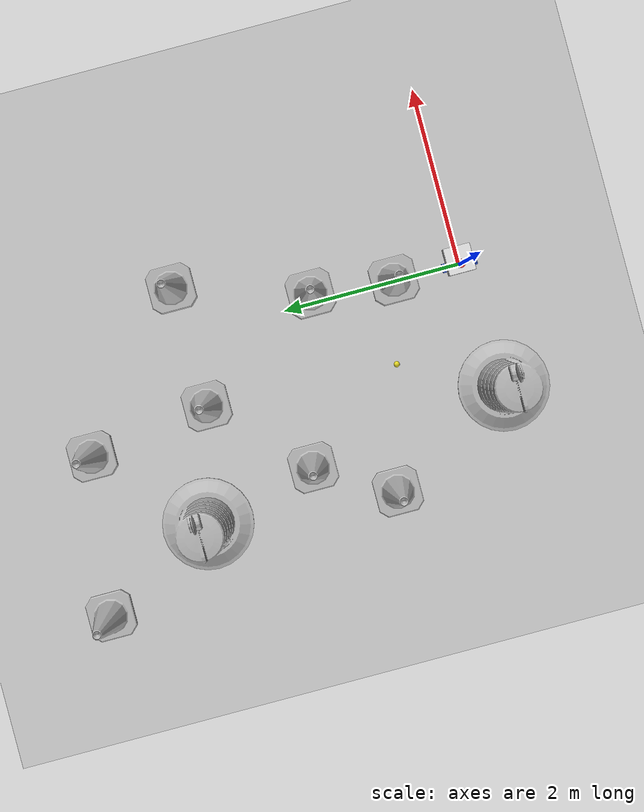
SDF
<sdf version="1.7">
 <world name="default">
  <light name="sun" type="directional">
   <pose>0 0 10 0 -0 0</pose>
   <diffuse>0.8 0.8 0.8 1</diffuse>
   <specular>0.2 0.2 0.2 1</specular>
   <attenuation>
    <range>1000</range>
    <constant>0.9</constant>
    <linear>0.01</linear>
    <quadratic>0.001</quadratic>
   </attenuation>
   <direction>-0.5 0.1 -0.9</direction>
   <spot><inner_angle>0</inner_angle><outer_angle>0</outer_angle><falloff>0</falloff></spot>
  </light>
  <model name="ground_plane">
   <static>1</static>
   <link name="link">
    <collision name="collision">
     <geometry><plane><normal>0 0 1</normal><size>100 100</size></plane></geometry>
     <surface>
      <contact><collide_bitmask>65535</collide_bitmask></contact>
      <friction><ode><mu>100</mu><mu2>50</mu2></ode></friction>
     </surface>
    </collision>
    <visual name="visual">
     <cast_shadows>0</cast_shadows>
     <geometry><plane><normal>0 0 1</normal><size>100 100</size></plane></geometry>
     <material>
      <script><uri>file://media/materials/scripts/gazebo.material</uri><name>Gazebo/Grey</name></script>
     </material>
    </visual>
   </link>
  </model>
  <gravity>0 0 -9.8</gravity>
  <magnetic_field>6e-06 2.3e-05 -4.2e-05</magnetic_field>
  <atmosphere type="adiabatic"/>
  <physics type="ode">
   <max_step_size>0.001</max_step_size>
   <real_time_factor>1</real_time_factor>
   <real_time_update_rate>1000</real_time_update_rate>
  </physics>
  <scene><ambient>0.4 0.4 0.4 1</ambient><background>0.7 0.7 0.7 1</background><shadows>1</shadows></scene>
  <audio><device>default</device></audio>
  <spherical_coordinates>
   <surface_model>EARTH_WGS84</surface_model>
   <latitude_deg>0</latitude_deg>
   <longitude_deg>0</longitude_deg>
   <elevation>0</elevation>
   <heading_deg>0</heading_deg>
  </spherical_coordinates>
  <model name="Construction Barrel">
   <link name="link">
    <inertial>
     <pose>0 0 0.4 0 -0 0</pose>
     <mass>500</mass>
     <inertia><ixx>51.2096</ixx><iyy>51.2096</iyy><izz>25</izz><ixy>0</ixy><ixz>0</ixz><iyz>0</iyz></inertia>
    </inertial>
    <collision name="collision">
     <geometry><mesh><uri>model://construction_barrel/meshes/construction_barrel.dae</uri></mesh></geometry>
    </collision>
    <visual name="visual">
     <geometry><mesh><uri>model://construction_barrel/meshes/construction_barrel.dae</uri></mesh></geometry>
    </visual>
   </link>
   <pose>-1.41893 -0.134317 0 0 0 -3.1e-05</pose>
  </model>
  <model name="Construction Cone">
   <link name="link">
    <collision name="collision">
     <geometry>
      <mesh><scale>10 10 10</scale><uri>model://construction_cone/meshes/construction_cone.dae</uri></mesh>
     </geometry>
    </collision>
    <visual name="visual">
     <geometry>
      <mesh><scale>10 10 10</scale><uri>model://construction_cone/meshes/construction_cone.dae</uri></mesh>
     </geometry>
    </visual>
    <inertial>
     <inertia><ixx>1</ixx><ixy>0</ixy><ixz>0</ixz><iyy>1</iyy><iyz>0</iyz><izz>1</izz></inertia>
     <mass>1</mass>
    </inertial>
   </link>
   <pose>-1.7517 2.13765 -0 0 -1e-06 0</pose>
  </model>
  <model name="Construction Cone_0">
   <link name="link">
    <collision name="collision">
     <geometry>
      <mesh><scale>10 10 10</scale><uri>model://construction_cone/meshes/construction_cone.dae</uri></mesh>
     </geometry>
    </collision>
    <visual name="visual">
     <geometry>
      <mesh><scale>10 10 10</scale><uri>model://construction_cone/meshes/construction_cone.dae</uri></mesh>
     </geometry>
    </visual>
    <inertial>
     <inertia><ixx>1</ixx><ixy>0</ixy><ixz>0</ixz><iyy>1</iyy><iyz>0</iyz><izz>1</izz></inertia>
     <mass>1</mass>
    </inertial>
   </link>
   <pose>-2.24557 1.30146 -3e-06 -3e-06 -1e-06 -0</pose>
  </model>
  <model name="Construction Cone_1">
   <link name="link">
    <collision name="collision">
     <geometry>
      <mesh><scale>10 10 10</scale><uri>model://construction_cone/meshes/construction_cone.dae</uri></mesh>
     </geometry>
    </collision>
    <visual name="visual">
     <geometry>
      <mesh><scale>10 10 10</scale><uri>model://construction_cone/meshes/construction_cone.dae</uri></mesh>
     </geometry>
    </visual>
    <inertial>
     <inertia><ixx>1</ixx><ixy>0</ixy><ixz>0</ixz><iyy>1</iyy><iyz>0</iyz><izz>1</izz></inertia>
     <mass>1</mass>
    </inertial>
   </link>
   <pose>-0.790651 3.09783 -1e-05 -1e-06 0 0</pose>
  </model>
  <model name="Construction Cone_2">
   <link name="link">
    <collision name="collision">
     <geometry>
      <mesh><scale>10 10 10</scale><uri>model://construction_cone/meshes/construction_cone.dae</uri></mesh>
     </geometry>
    </collision>
    <visual name="visual">
     <geometry>
      <mesh><scale>10 10 10</scale><uri>model://construction_cone/meshes/construction_cone.dae</uri></mesh>
     </geometry>
    </visual>
    <inertial>
     <inertia><ixx>1</ixx><ixy>0</ixy><ixz>0</ixz><iyy>1</iyy><iyz>0</iyz><izz>1</izz></inertia>
     <mass>1</mass>
    </inertial>
   </link>
   <pose>0.020918 0.743842 -4e-06 4e-06 -1e-06 0</pose>
  </model>
  <model name="Construction Cone_3">
   <link name="link">
    <collision name="collision">
     <geometry>
      <mesh><scale>10 10 10</scale><uri>model://construction_cone/meshes/construction_cone.dae</uri></mesh>
     </geometry>
    </collision>
    <visual name="visual">
     <geometry>
      <mesh><scale>10 10 10</scale><uri>model://construction_cone/meshes/construction_cone.dae</uri></mesh>
     </geometry>
    </visual>
    <inertial>
     <inertia><ixx>1</ixx><ixy>0</ixy><ixz>0</ixz><iyy>1</iyy><iyz>0</iyz><izz>1</izz></inertia>
     <mass>1</mass>
    </inertial>
   </link>
   <pose>0.113683 1.67055 -3e-06 -3e-06 -1e-06 -0</pose>
  </model>
  <model name="Construction Cone_4">
   <link name="link">
    <collision name="collision">
     <geometry>
      <mesh><scale>10 10 10</scale><uri>model://construction_cone/meshes/construction_cone.dae</uri></mesh>
     </geometry>
    </collision>
    <visual name="visual">
     <geometry>
      <mesh><scale>10 10 10</scale><uri>model://construction_cone/meshes/construction_cone.dae</uri></mesh>
     </geometry>
    </visual>
    <inertial>
     <inertia><ixx>1</ixx><ixy>0</ixy><ixz>0</ixz><iyy>1</iyy><iyz>0</iyz><izz>1</izz></inertia>
     <mass>1</mass>
    </inertial>
   </link>
   <pose>0.565351 3.14138 -4e-06 4e-06 -1e-06 0</pose>
  </model>
  <model name="Construction Barrel_0">
   <link name="link">
    <inertial>
     <pose>0 0 0.4 0 -0 0</pose>
     <mass>500</mass>
     <inertia><ixx>51.2096</ixx><iyy>51.2096</iyy><izz>25</izz><ixy>0</ixy><ixz>0</ixz><iyz>0</iyz></inertia>
    </inertial>
    <collision name="collision">
     <geometry><mesh><uri>model://construction_barrel/meshes/construction_barrel.dae</uri></mesh></geometry>
    </collision>
    <visual name="visual">
     <geometry><mesh><uri>model://construction_barrel/meshes/construction_barrel.dae</uri></mesh></geometry>
    </visual>
   </link>
   <pose>-2.05537 3.42046 -4e-06 -3e-06 -1e-05 -1.7e-05</pose>
  </model>
  <model name="Construction Cone_5">
   <link name="link">
    <collision name="collision">
     <geometry>
      <mesh><scale>10 10 10</scale><uri>model://construction_cone/meshes/construction_cone.dae</uri></mesh>
     </geometry>
    </collision>
    <visual name="visual">
     <geometry>
      <mesh><scale>10 10 10</scale><uri>model://construction_cone/meshes/construction_cone.dae</uri></mesh>
     </geometry>
    </visual>
    <inertial>
     <inertia><ixx>1</ixx><ixy>0</ixy><ixz>0</ixz><iyy>1</iyy><iyz>0</iyz><izz>1</izz></inertia>
     <mass>1</mass>
    </inertial>
   </link>
   <pose>-1.00257 4.46516 -0 0 -0 0</pose>
  </model>
  <model name="Construction Cone_6">
   <link name="link">
    <collision name="collision">
     <geometry>
      <mesh><scale>10 10 10</scale><uri>model://construction_cone/meshes/construction_cone.dae</uri></mesh>
     </geometry>
    </collision>
    <visual name="visual">
     <geometry>
      <mesh><scale>10 10 10</scale><uri>model://construction_cone/meshes/construction_cone.dae</uri></mesh>
     </geometry>
    </visual>
    <inertial>
     <inertia><ixx>1</ixx><ixy>0</ixy><ixz>0</ixz><iyy>1</iyy><iyz>0</iyz><izz>1</izz></inertia>
     <mass>1</mass>
    </inertial>
   </link>
   <pose>-2.75927 4.7109 -3e-06 -3e-06 -1e-06 -0</pose>
  </model>
  <model name="Mangobee_DifferentialDriveWheel_Robot">
   <link name="base_link">
    <inertial>
     <pose>0.055714 0 0.078571 0 -0 0</pose>
     <mass>0.7</mass>
     <inertia>
      <ixx>0.0064169</ixx>
      <ixy>0</ixy>
      <ixz>0.00118929</ixz>
      <iyy>0.00745405</iyy>
      <iyz>0</iyz>
      <izz>0.00876214</izz>
     </inertia>
    </inertial>
    <collision name="base_link_fixed_joint_lump__chassis_collision">
     <pose>0.05 0 0.075 0 -0 0</pose>
     <geometry><box><size>0.3 0.3 0.15</size></box></geometry>
    </collision>
    <collision name="base_link_fixed_joint_lump__caster_wheel_collision_1">
     <pose>0.14 0 0 0 -0 0</pose>
     <geometry><sphere><radius>0.05</radius></sphere></geometry>
     <surface><friction><ode><mu>0.001</mu><mu2>0.001</mu2></ode></friction></surface>
    </collision>
    <collision name="base_link_fixed_joint_lump__laser_frame_collision_2">
     <pose>0 0 0.175 0 -0 0</pose>
     <geometry><cylinder><length>0.04</length><radius>0.05</radius></cylinder></geometry>
    </collision>
    <visual name="base_link_fixed_joint_lump__chassis_visual">
     <pose>0.05 0 0.075 0 -0 0</pose>
     <geometry><box><size>0.3 0.3 0.15</size></box></geometry>
     <material>
      <script><name>Gazebo/White</name><uri>file://media/materials/scripts/gazebo.material</uri></script>
     </material>
    </visual>
    <visual name="base_link_fixed_joint_lump__camera_link_visual_1">
     <pose>0.205 0 0.08 0 -0 0</pose>
     <geometry><box><size>0.01 0.03 0.03</size></box></geometry>
     <material>
      <script><name>Gazebo/Red</name><uri>file://media/materials/scripts/gazebo.material</uri></script>
     </material>
    </visual>
    <visual name="base_link_fixed_joint_lump__caster_wheel_visual_2">
     <pose>0.14 0 0 0 -0 0</pose>
     <geometry><sphere><radius>0.05</radius></sphere></geometry>
     <material>
      <script><name>Gazebo/Black</name><uri>file://media/materials/scripts/gazebo.material</uri></script>
     </material>
    </visual>
    <visual name="base_link_fixed_joint_lump__laser_frame_visual_3">
     <pose>0 0 0.175 0 -0 0</pose>
     <geometry><cylinder><length>0.04</length><radius>0.05</radius></cylinder></geometry>
     <material>
      <script><name>Gazebo/Red</name><uri>file://media/materials/scripts/gazebo.material</uri></script>
     </material>
    </visual>
    <sensor name="camera" type="camera">
     <visualize>1</visualize>
     <update_rate>10</update_rate>
     <camera>
      <horizontal_fov>1.089</horizontal_fov>
      <image><format>R8G8B8</format><width>640</width><height>480</height></image>
      <clip><near>0.05</near><far>8</far></clip>
     </camera>
     <plugin name="camera_controller" filename="libgazebo_ros_camera.so">
      <frame_name>camera_link_optical</frame_name>
     </plugin>
     <pose>0.205 0 0.08 0 -0 0</pose>
    </sensor>
    <sensor name="laser" type="ray">
     <visualize>0</visualize>
     <update_rate>10</update_rate>
     <ray>
      <scan>
       <horizontal>
        <samples>360</samples>
        <min_angle>-3.14</min_angle>
        <max_angle>3.14</max_angle>
        <resolution>1</resolution>
       </horizontal>
       <vertical><samples>1</samples><min_angle>0</min_angle><max_angle>0</max_angle></vertical>
      </scan>
      <range><min>0.3</min><max>12</max></range>
     </ray>
     <plugin name="laser_controller" filename="libgazebo_ros_ray_sensor.so">
      <ros><argument>~/out:=scan</argument></ros>
      <output_type>sensor_msgs/LaserScan</output_type>
      <frame_name>laser_frame</frame_name>
     </plugin>
     <pose>0 0 0.175 0 -0 0</pose>
    </sensor>
   </link>
   <joint name="left_wheel_joint" type="revolute">
    <pose relative_to="base_link">0 0.175 0 -1.5708 0 0</pose>
    <parent>base_link</parent>
    <child>left_wheel</child>
    <axis>
     <xyz>0 0 1</xyz>
     <limit><lower>-1e+16</lower><upper>1e+16</upper></limit>
     <dynamics><spring_reference>0</spring_reference><spring_stiffness>0</spring_stiffness></dynamics>
    </axis>
   </joint>
   <link name="left_wheel">
    <pose relative_to="left_wheel_joint">0 0 0 0 -0 0</pose>
    <inertial>
     <mass>0.1</mass>
     <inertia>
      <ixx>7.58333e-05</ixx>
      <ixy>0</ixy>
      <ixz>0</ixz>
      <iyy>7.58333e-05</iyy>
      <iyz>0</iyz>
      <izz>0.000125</izz>
     </inertia>
    </inertial>
    <collision name="left_wheel_collision">
     <geometry><cylinder><length>0.04</length><radius>0.05</radius></cylinder></geometry>
    </collision>
    <visual name="left_wheel_visual">
     <geometry><cylinder><length>0.04</length><radius>0.05</radius></cylinder></geometry>
     <material>
      <script><name>Gazebo/Blue</name><uri>file://media/materials/scripts/gazebo.material</uri></script>
     </material>
    </visual>
   </link>
   <joint name="right_wheel_joint" type="revolute">
    <pose relative_to="base_link">0 -0.175 0 1.5708 -0 0</pose>
    <parent>base_link</parent>
    <child>right_wheel</child>
    <axis>
     <xyz>0 0 -1</xyz>
     <limit><lower>-1e+16</lower><upper>1e+16</upper></limit>
     <dynamics><spring_reference>0</spring_reference><spring_stiffness>0</spring_stiffness></dynamics>
    </axis>
   </joint>
   <link name="right_wheel">
    <pose relative_to="right_wheel_joint">0 0 0 0 -0 0</pose>
    <inertial>
     <mass>0.1</mass>
     <inertia>
      <ixx>7.58333e-05</ixx>
      <ixy>0</ixy>
      <ixz>0</ixz>
      <iyy>7.58333e-05</iyy>
      <iyz>0</iyz>
      <izz>0.000125</izz>
     </inertia>
    </inertial>
    <collision name="right_wheel_collision">
     <geometry><cylinder><length>0.04</length><radius>0.05</radius></cylinder></geometry>
    </collision>
    <visual name="right_wheel_visual">
     <geometry><cylinder><length>0.04</length><radius>0.05</radius></cylinder></geometry>
     <material>
      <script><name>Gazebo/Blue</name><uri>file://media/materials/scripts/gazebo.material</uri></script>
     </material>
    </visual>
   </link>
   <static>0</static>
   <plugin name="diff_drive" filename="libgazebo_ros_diff_drive.so">
    <left_joint>left_wheel_joint</left_joint>
    <right_joint>right_wheel_joint</right_joint>
    <wheel_separation>0.35</wheel_separation>
    <wheel_diameter>0.1</wheel_diameter>
    <max_wheel_torque>200</max_wheel_torque>
    <max_wheel_acceleration>10.0</max_wheel_acceleration>
    <odometry_frame>odom</odometry_frame>
    <robot_base_frame>base_link</robot_base_frame>
    <publish_odom>1</publish_odom>
    <publish_odom_tf>1</publish_odom_tf>
    <publish_wheel_tf>1</publish_wheel_tf>
   </plugin>
   <pose>0.001232 1.2e-05 0.05 -0 1.2e-05 7e-06</pose>
  </model>
  <model name="tennisball">
   <link name="link_1">
    <inertial>
     <mass>1</mass>
     <inertia><ixx>0.1</ixx><ixy>0</ixy><ixz>0</ixz><iyy>0.1</iyy><iyz>0</iyz><izz>0.1</izz></inertia>
    </inertial>
    <pose>-0.210638 0.433159 0 0 -0 0</pose>
    <visual name="visual">
     <geometry><sphere><radius>0.033</radius></sphere></geometry>
     <material>
      <lighting>1</lighting>
      <script><uri>file://media/materials/scripts/gazebo.material</uri><name>Gazebo/Yellow</name></script>
      <shader type="pixel"><normal_map>__default__</normal_map></shader>
      <ambient>1 1 0 1</ambient>
      <diffuse>1 1 0 1</diffuse>
      <emissive>0 0 0 1</emissive>
     </material>
    </visual>
    <collision name="collision">
     <geometry><sphere><radius>0.033</radius></sphere></geometry>
     <surface>
      <friction>
       <ode><mu>1</mu><mu2>1</mu2><fdir1>0 0 0</fdir1><slip1>0</slip1><slip2>0</slip2></ode>
       <torsional>
        <coefficient>1</coefficient>
        <patch_radius>0</patch_radius>
        <surface_radius>0</surface_radius>
        <use_patch_radius>1</use_patch_radius>
        <ode><slip>0</slip></ode>
       </torsional>
      </friction>
      <bounce><restitution_coefficient>0</restitution_coefficient><threshold>1e+06</threshold></bounce>
      <contact>
       <collide_without_contact>0</collide_without_contact>
       <collide_without_contact_bitmask>1</collide_without_contact_bitmask>
       <collide_bitmask>1</collide_bitmask>
       <ode>
        <soft_cfm>0</soft_cfm>
        <soft_erp>0.2</soft_erp>
        <kp>1e+13</kp>
        <kd>1</kd>
        <max_vel>0.01</max_vel>
        <min_depth>0</min_depth>
       </ode>
       <bullet>
        <split_impulse>1</split_impulse>
        <split_impulse_penetration_threshold>-0.01</split_impulse_penetration_threshold>
        <soft_cfm>0</soft_cfm>
        <soft_erp>0.2</soft_erp>
        <kp>1e+13</kp>
        <kd>1</kd>
       </bullet>
      </contact>
     </surface>
    </collision>
   </link>
   <static>0</static>
   <pose>-0.676907 0.516881 0.033 0 -0 0</pose>
  </model>
 </world>
</sdf>
